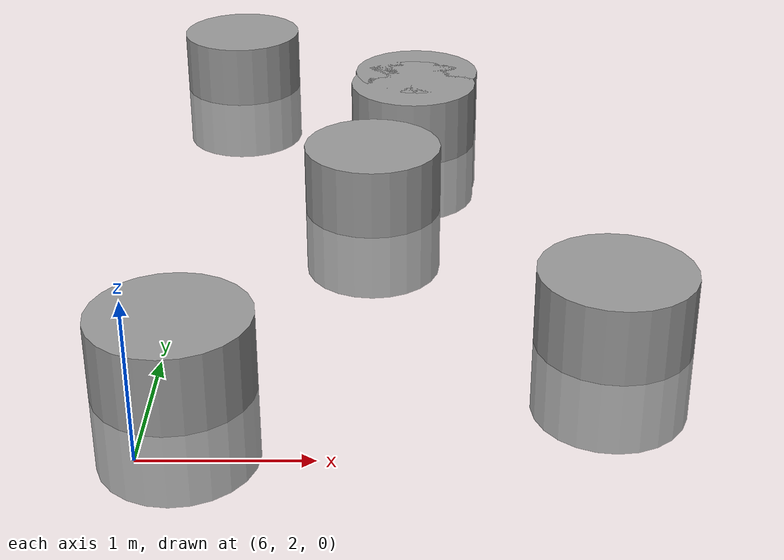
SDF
<sdf version="1.6">
 <world name="default">
  <model name="ground_plane">
   <static>1</static>
   <link name="link">
    <collision name="collision">
     <geometry><plane><normal>0 0 1</normal><size>100 100</size></plane></geometry>
     <surface><friction><ode><mu>100</mu><mu2>50</mu2></ode></friction></surface>
    </collision>
    <visual name="visual">
     <cast_shadows>0</cast_shadows>
     <geometry><plane><normal>0 0 1</normal><size>100 100</size></plane></geometry>
     <material>
      <script><uri>file://media/materials/scripts/gazebo.material</uri><name>Gazebo/Grey</name></script>
     </material>
    </visual>
   </link>
  </model>
  <model name="c1">
   <link name="link">
    <inertial>
     <mass>0.284858</mass>
     <inertia>
      <ixx>0.0288096</ixx>
      <ixy>0</ixy>
      <ixz>0</ixz>
      <iyy>0.0288096</iyy>
      <iyz>0</iyz>
      <izz>0.010143</izz>
     </inertia>
    </inertial>
    <visual name="visual">
     <geometry><cylinder><radius>0.5</radius><length>1</length></cylinder></geometry>
     <material>
      <script><name>Gazebo/Grey</name><uri>file://media/materials/scripts/gazebo.material</uri></script>
      <ambient>0.3 0.3 0.3 1</ambient>
      <diffuse>0.7 0.7 0.7 1</diffuse>
      <specular>0.01 0.01 0.01 1</specular>
      <emissive>0 0 0 1</emissive>
      <shader type="vertex"><normal_map>__default__</normal_map></shader>
     </material>
    </visual>
    <collision name="collision">
     <geometry><cylinder><radius>0.5</radius><length>1</length></cylinder></geometry>
     <surface>
      <friction>
       <ode><mu>1</mu><mu2>1</mu2><fdir1>0 0 0</fdir1><slip1>0</slip1><slip2>0</slip2></ode>
       <torsional>
        <coefficient>1</coefficient>
        <patch_radius>0</patch_radius>
        <surface_radius>0</surface_radius>
        <use_patch_radius>1</use_patch_radius>
        <ode><slip>0</slip></ode>
       </torsional>
      </friction>
      <bounce><restitution_coefficient>0</restitution_coefficient><threshold>1e+06</threshold></bounce>
      <contact>
       <collide_without_contact>0</collide_without_contact>
       <collide_without_contact_bitmask>1</collide_without_contact_bitmask>
       <collide_bitmask>1</collide_bitmask>
       <ode>
        <soft_cfm>0</soft_cfm>
        <soft_erp>0.2</soft_erp>
        <kp>1e+13</kp>
        <kd>1</kd>
        <max_vel>0.01</max_vel>
        <min_depth>0</min_depth>
       </ode>
       <bullet>
        <split_impulse>1</split_impulse>
        <split_impulse_penetration_threshold>-0.01</split_impulse_penetration_threshold>
        <soft_cfm>0</soft_cfm>
        <soft_erp>0.2</soft_erp>
        <kp>1e+13</kp>
        <kd>1</kd>
       </bullet>
      </contact>
     </surface>
    </collision>
   </link>
   <static>1</static>
   <pose>6.049082156801985 7.679461696064753 0 0 -0 0</pose>
  </model>
  <model name="c2">
   <link name="link">
    <inertial>
     <mass>0.284858</mass>
     <inertia>
      <ixx>0.0288096</ixx>
      <ixy>0</ixy>
      <ixz>0</ixz>
      <iyy>0.0288096</iyy>
      <iyz>0</iyz>
      <izz>0.010143</izz>
     </inertia>
    </inertial>
    <visual name="visual">
     <geometry><cylinder><radius>0.5</radius><length>1</length></cylinder></geometry>
     <material>
      <script><name>Gazebo/Grey</name><uri>file://media/materials/scripts/gazebo.material</uri></script>
      <ambient>0.3 0.3 0.3 1</ambient>
      <diffuse>0.7 0.7 0.7 1</diffuse>
      <specular>0.01 0.01 0.01 1</specular>
      <emissive>0 0 0 1</emissive>
      <shader type="vertex"><normal_map>__default__</normal_map></shader>
     </material>
    </visual>
    <collision name="collision">
     <geometry><cylinder><radius>0.5</radius><length>1</length></cylinder></geometry>
     <surface>
      <friction>
       <ode><mu>1</mu><mu2>1</mu2><fdir1>0 0 0</fdir1><slip1>0</slip1><slip2>0</slip2></ode>
       <torsional>
        <coefficient>1</coefficient>
        <patch_radius>0</patch_radius>
        <surface_radius>0</surface_radius>
        <use_patch_radius>1</use_patch_radius>
        <ode><slip>0</slip></ode>
       </torsional>
      </friction>
      <bounce><restitution_coefficient>0</restitution_coefficient><threshold>1e+06</threshold></bounce>
      <contact>
       <collide_without_contact>0</collide_without_contact>
       <collide_without_contact_bitmask>1</collide_without_contact_bitmask>
       <collide_bitmask>1</collide_bitmask>
       <ode>
        <soft_cfm>0</soft_cfm>
        <soft_erp>0.2</soft_erp>
        <kp>1e+13</kp>
        <kd>1</kd>
        <max_vel>0.01</max_vel>
        <min_depth>0</min_depth>
       </ode>
       <bullet>
        <split_impulse>1</split_impulse>
        <split_impulse_penetration_threshold>-0.01</split_impulse_penetration_threshold>
        <soft_cfm>0</soft_cfm>
        <soft_erp>0.2</soft_erp>
        <kp>1e+13</kp>
        <kd>1</kd>
       </bullet>
      </contact>
     </surface>
    </collision>
   </link>
   <static>1</static>
   <pose>6.114824295082338 2.7261732896300597 0 0 -0 0</pose>
  </model>
  <model name="c3">
   <link name="link">
    <inertial>
     <mass>0.284858</mass>
     <inertia>
      <ixx>0.0288096</ixx>
      <ixy>0</ixy>
      <ixz>0</ixz>
      <iyy>0.0288096</iyy>
      <iyz>0</iyz>
      <izz>0.010143</izz>
     </inertia>
    </inertial>
    <visual name="visual">
     <geometry><cylinder><radius>0.5</radius><length>1</length></cylinder></geometry>
     <material>
      <script><name>Gazebo/Grey</name><uri>file://media/materials/scripts/gazebo.material</uri></script>
      <ambient>0.3 0.3 0.3 1</ambient>
      <diffuse>0.7 0.7 0.7 1</diffuse>
      <specular>0.01 0.01 0.01 1</specular>
      <emissive>0 0 0 1</emissive>
      <shader type="vertex"><normal_map>__default__</normal_map></shader>
     </material>
    </visual>
    <collision name="collision">
     <geometry><cylinder><radius>0.5</radius><length>1</length></cylinder></geometry>
     <surface>
      <friction>
       <ode><mu>1</mu><mu2>1</mu2><fdir1>0 0 0</fdir1><slip1>0</slip1><slip2>0</slip2></ode>
       <torsional>
        <coefficient>1</coefficient>
        <patch_radius>0</patch_radius>
        <surface_radius>0</surface_radius>
        <use_patch_radius>1</use_patch_radius>
        <ode><slip>0</slip></ode>
       </torsional>
      </friction>
      <bounce><restitution_coefficient>0</restitution_coefficient><threshold>1e+06</threshold></bounce>
      <contact>
       <collide_without_contact>0</collide_without_contact>
       <collide_without_contact_bitmask>1</collide_without_contact_bitmask>
       <collide_bitmask>1</collide_bitmask>
       <ode>
        <soft_cfm>0</soft_cfm>
        <soft_erp>0.2</soft_erp>
        <kp>1e+13</kp>
        <kd>1</kd>
        <max_vel>0.01</max_vel>
        <min_depth>0</min_depth>
       </ode>
       <bullet>
        <split_impulse>1</split_impulse>
        <split_impulse_penetration_threshold>-0.01</split_impulse_penetration_threshold>
        <soft_cfm>0</soft_cfm>
        <soft_erp>0.2</soft_erp>
        <kp>1e+13</kp>
        <kd>1</kd>
       </bullet>
      </contact>
     </surface>
    </collision>
   </link>
   <static>1</static>
   <pose>8.784004250958336 3.2509420471994 0 0 -0 0</pose>
  </model>
  <model name="c4">
   <link name="link">
    <inertial>
     <mass>0.284858</mass>
     <inertia>
      <ixx>0.0288096</ixx>
      <ixy>0</ixy>
      <ixz>0</ixz>
      <iyy>0.0288096</iyy>
      <iyz>0</iyz>
      <izz>0.010143</izz>
     </inertia>
    </inertial>
    <visual name="visual">
     <geometry><cylinder><radius>0.5</radius><length>1</length></cylinder></geometry>
     <material>
      <script><name>Gazebo/Grey</name><uri>file://media/materials/scripts/gazebo.material</uri></script>
      <ambient>0.3 0.3 0.3 1</ambient>
      <diffuse>0.7 0.7 0.7 1</diffuse>
      <specular>0.01 0.01 0.01 1</specular>
      <emissive>0 0 0 1</emissive>
      <shader type="vertex"><normal_map>__default__</normal_map></shader>
     </material>
    </visual>
    <collision name="collision">
     <geometry><cylinder><radius>0.5</radius><length>1</length></cylinder></geometry>
     <surface>
      <friction>
       <ode><mu>1</mu><mu2>1</mu2><fdir1>0 0 0</fdir1><slip1>0</slip1><slip2>0</slip2></ode>
       <torsional>
        <coefficient>1</coefficient>
        <patch_radius>0</patch_radius>
        <surface_radius>0</surface_radius>
        <use_patch_radius>1</use_patch_radius>
        <ode><slip>0</slip></ode>
       </torsional>
      </friction>
      <bounce><restitution_coefficient>0</restitution_coefficient><threshold>1e+06</threshold></bounce>
      <contact>
       <collide_without_contact>0</collide_without_contact>
       <collide_without_contact_bitmask>1</collide_without_contact_bitmask>
       <collide_bitmask>1</collide_bitmask>
       <ode>
        <soft_cfm>0</soft_cfm>
        <soft_erp>0.2</soft_erp>
        <kp>1e+13</kp>
        <kd>1</kd>
        <max_vel>0.01</max_vel>
        <min_depth>0</min_depth>
       </ode>
       <bullet>
        <split_impulse>1</split_impulse>
        <split_impulse_penetration_threshold>-0.01</split_impulse_penetration_threshold>
        <soft_cfm>0</soft_cfm>
        <soft_erp>0.2</soft_erp>
        <kp>1e+13</kp>
        <kd>1</kd>
       </bullet>
      </contact>
     </surface>
    </collision>
   </link>
   <static>1</static>
   <pose>7.252745215714825 5.154054218274703 0 0 -0 0</pose>
  </model>
  <model name="c9">
   <link name="link">
    <inertial>
     <mass>0.284858</mass>
     <inertia>
      <ixx>0.0288096</ixx>
      <ixy>0</ixy>
      <ixz>0</ixz>
      <iyy>0.0288096</iyy>
      <iyz>0</iyz>
      <izz>0.010143</izz>
     </inertia>
    </inertial>
    <visual name="visual">
     <geometry><cylinder><radius>0.5</radius><length>1</length></cylinder></geometry>
     <material>
      <script><name>Gazebo/Grey</name><uri>file://media/materials/scripts/gazebo.material</uri></script>
      <ambient>0.3 0.3 0.3 1</ambient>
      <diffuse>0.7 0.7 0.7 1</diffuse>
      <specular>0.01 0.01 0.01 1</specular>
      <emissive>0 0 0 1</emissive>
      <shader type="vertex"><normal_map>__default__</normal_map></shader>
     </material>
    </visual>
    <collision name="collision">
     <geometry><cylinder><radius>0.5</radius><length>1</length></cylinder></geometry>
     <surface>
      <friction>
       <ode><mu>1</mu><mu2>1</mu2><fdir1>0 0 0</fdir1><slip1>0</slip1><slip2>0</slip2></ode>
       <torsional>
        <coefficient>1</coefficient>
        <patch_radius>0</patch_radius>
        <surface_radius>0</surface_radius>
        <use_patch_radius>1</use_patch_radius>
        <ode><slip>0</slip></ode>
       </torsional>
      </friction>
      <bounce><restitution_coefficient>0</restitution_coefficient><threshold>1e+06</threshold></bounce>
      <contact>
       <collide_without_contact>0</collide_without_contact>
       <collide_without_contact_bitmask>1</collide_without_contact_bitmask>
       <collide_bitmask>1</collide_bitmask>
       <ode>
        <soft_cfm>0</soft_cfm>
        <soft_erp>0.2</soft_erp>
        <kp>1e+13</kp>
        <kd>1</kd>
        <max_vel>0.01</max_vel>
        <min_depth>0</min_depth>
       </ode>
       <bullet>
        <split_impulse>1</split_impulse>
        <split_impulse_penetration_threshold>-0.01</split_impulse_penetration_threshold>
        <soft_cfm>0</soft_cfm>
        <soft_erp>0.2</soft_erp>
        <kp>1e+13</kp>
        <kd>1</kd>
       </bullet>
      </contact>
     </surface>
    </collision>
   </link>
   <static>1</static>
   <pose>7.59093964259658 6.6884400565732705 0 0 -0 0</pose>
  </model>
  <model name="c10">
   <link name="link">
    <inertial>
     <mass>0.284858</mass>
     <inertia>
      <ixx>0.0288096</ixx>
      <ixy>0</ixy>
      <ixz>0</ixz>
      <iyy>0.0288096</iyy>
      <iyz>0</iyz>
      <izz>0.010143</izz>
     </inertia>
    </inertial>
    <visual name="visual">
     <geometry><cylinder><radius>0.5</radius><length>1</length></cylinder></geometry>
     <material>
      <script><name>Gazebo/Grey</name><uri>file://media/materials/scripts/gazebo.material</uri></script>
      <ambient>0.3 0.3 0.3 1</ambient>
      <diffuse>0.7 0.7 0.7 1</diffuse>
      <specular>0.01 0.01 0.01 1</specular>
      <emissive>0 0 0 1</emissive>
      <shader type="vertex"><normal_map>__default__</normal_map></shader>
     </material>
    </visual>
    <collision name="collision">
     <geometry><cylinder><radius>0.5</radius><length>1</length></cylinder></geometry>
     <surface>
      <friction>
       <ode><mu>1</mu><mu2>1</mu2><fdir1>0 0 0</fdir1><slip1>0</slip1><slip2>0</slip2></ode>
       <torsional>
        <coefficient>1</coefficient>
        <patch_radius>0</patch_radius>
        <surface_radius>0</surface_radius>
        <use_patch_radius>1</use_patch_radius>
        <ode><slip>0</slip></ode>
       </torsional>
      </friction>
      <bounce><restitution_coefficient>0</restitution_coefficient><threshold>1e+06</threshold></bounce>
      <contact>
       <collide_without_contact>0</collide_without_contact>
       <collide_without_contact_bitmask>1</collide_without_contact_bitmask>
       <collide_bitmask>1</collide_bitmask>
       <ode>
        <soft_cfm>0</soft_cfm>
        <soft_erp>0.2</soft_erp>
        <kp>1e+13</kp>
        <kd>1</kd>
        <max_vel>0.01</max_vel>
        <min_depth>0</min_depth>
       </ode>
       <bullet>
        <split_impulse>1</split_impulse>
        <split_impulse_penetration_threshold>-0.01</split_impulse_penetration_threshold>
        <soft_cfm>0</soft_cfm>
        <soft_erp>0.2</soft_erp>
        <kp>1e+13</kp>
        <kd>1</kd>
       </bullet>
      </contact>
     </surface>
    </collision>
   </link>
   <static>1</static>
   <pose>7.56133000419658 6.418111100991259 0 0 -0 0</pose>
  </model>
 </world>
</sdf>
